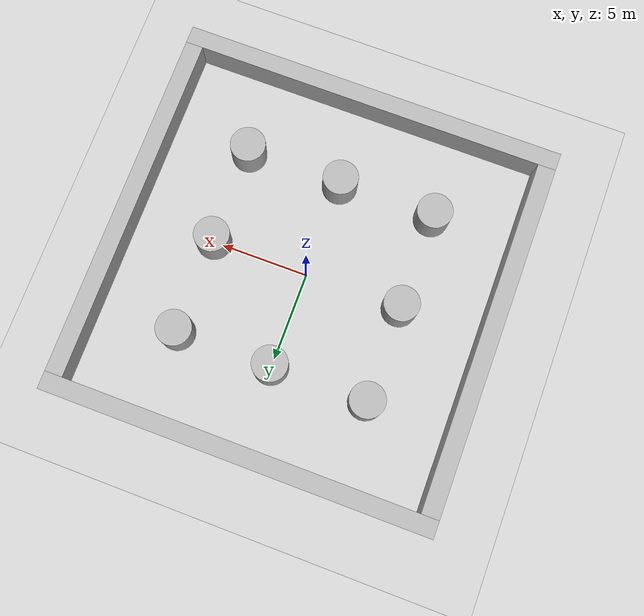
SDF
<sdf version='1.10'>
  <world name='empty'>
    <physics name='1ms' type='ignored'>
      <max_step_size>0.001</max_step_size>
      <real_time_factor>1</real_time_factor>
      <real_time_update_rate>1000</real_time_update_rate>
    </physics>
    <plugin name='gz::sim::systems::Physics' filename='gz-sim-physics-system'/>
    <plugin name='gz::sim::systems::UserCommands' filename='gz-sim-user-commands-system'/>
    <plugin name='gz::sim::systems::SceneBroadcaster' filename='gz-sim-scene-broadcaster-system'/>
    <plugin name='gz::sim::systems::Contact' filename='gz-sim-contact-system'/>
    <gravity>0 0 -9.8000000000000007</gravity>
    <magnetic_field>5.5644999999999998e-06 2.2875799999999999e-05 -4.2388400000000002e-05</magnetic_field>
    <atmosphere type='adiabatic'/>
    <scene>
      <ambient>0.400000006 0.400000006 0.400000006 1</ambient>
      <background>0.699999988 0.699999988 0.699999988 1</background>
      <shadows>true</shadows>
    </scene>
    <model name='ground_plane'>
      <static>true</static>
      <link name='link'>
        <collision name='collision'>
          <geometry>
            <plane>
              <normal>0 0 1</normal>
              <size>100 100</size>
            </plane>
          </geometry>
          <surface>
            <friction>
              <ode/>
            </friction>
            <bounce/>
            <contact/>
          </surface>
        </collision>
        <visual name='visual'>
          <geometry>
            <plane>
              <normal>0 0 1</normal>
              <size>100 100</size>
            </plane>
          </geometry>
          <material>
            <ambient>0.800000012 0.800000012 0.800000012 1</ambient>
            <diffuse>0.800000012 0.800000012 0.800000012 1</diffuse>
            <specular>0.800000012 0.800000012 0.800000012 1</specular>
          </material>
        </visual>
        <pose>0 0 0 0 0 0</pose>
        <inertial>
          <pose>0 0 0 0 0 0</pose>
          <mass>1</mass>
          <inertia>
            <ixx>1</ixx>
            <ixy>0</ixy>
            <ixz>0</ixz>
            <iyy>1</iyy>
            <iyz>0</iyz>
            <izz>1</izz>
          </inertia>
        </inertial>
        <enable_wind>false</enable_wind>
      </link>
      <pose>0 0 0 0 0 0</pose>
      <self_collide>false</self_collide>
    </model>
    <model name='wall'>
      <pose>10.500000925222498 1.1308421438992765e-11 0.99999952955427984 9.5564059599978737e-13 9.2533209407452589e-07 -3.704398449280076e-12</pose>
      <link name='wall_link'>
        <inertial>
          <inertia>
            <ixx>673.33333300000004</ixx>
            <ixy>0</ixy>
            <ixz>0</ixz>
            <iyy>8.3333329999999997</iyy>
            <iyz>0</iyz>
            <izz>668.33333300000004</izz>
          </inertia>
          <mass>20</mass>
          <pose>0 0 0 0 0 0</pose>
        </inertial>
        <collision name='wall_collision'>
          <geometry>
            <box>
              <size>1 20 2</size>
            </box>
          </geometry>
          <surface>
            <friction>
              <ode/>
            </friction>
            <bounce/>
            <contact/>
          </surface>
        </collision>
        <visual name='wall_visual'>
          <geometry>
            <box>
              <size>1 20 2</size>
            </box>
          </geometry>
          <material>
            <ambient>0.300000012 0.300000012 0.300000012 1</ambient>
            <diffuse>0.699999988 0.699999988 0.699999988 1</diffuse>
            <specular>1 1 1 1</specular>
          </material>
        </visual>
        <pose>0 0 0 0 0 0</pose>
        <enable_wind>false</enable_wind>
      </link>
      <static>false</static>
      <self_collide>false</self_collide>
    </model>
    <model name='wall_0'>
      <pose>1.4255685561399451e-08 -10.499999999991125 0.9999998322253878 4.4904454325918757e-12 1.4254746476344775e-08 1.0622119103599673e-12</pose>
      <link name='wall_link'>
        <inertial>
          <inertia>
            <ixx>9.1666659999999993</ixx>
            <ixy>0</ixy>
            <ixz>0</ixz>
            <iyy>894.66666599999996</iyy>
            <iyz>0</iyz>
            <izz>889.16666599999996</izz>
          </inertia>
          <mass>22</mass>
          <pose>0 0 0 0 0 0</pose>
        </inertial>
        <collision name='wall_collision'>
          <geometry>
            <box>
              <size>22 1 2</size>
            </box>
          </geometry>
          <surface>
            <friction>
              <ode/>
            </friction>
            <bounce/>
            <contact/>
          </surface>
        </collision>
        <visual name='wall_visual'>
          <geometry>
            <box>
              <size>22 1 2</size>
            </box>
          </geometry>
          <material>
            <ambient>0.300000012 0.300000012 0.300000012 1</ambient>
            <diffuse>0.699999988 0.699999988 0.699999988 1</diffuse>
            <specular>1 1 1 1</specular>
          </material>
        </visual>
        <pose>0 0 0 0 0 0</pose>
        <enable_wind>false</enable_wind>
      </link>
      <static>false</static>
      <self_collide>false</self_collide>
    </model>
    <model name='wall_1'>
      <pose>-10.499999074896824 2.6528437677718922e-12 0.99999952958362892 2.3523687812325653e-12 9.2524109292318252e-07 -7.2159830187700325e-12</pose>
      <link name='wall_link'>
        <inertial>
          <inertia>
            <ixx>673.33333300000004</ixx>
            <ixy>0</ixy>
            <ixz>0</ixz>
            <iyy>8.3333329999999997</iyy>
            <iyz>0</iyz>
            <izz>668.33333300000004</izz>
          </inertia>
          <mass>20</mass>
          <pose>0 0 0 0 0 0</pose>
        </inertial>
        <collision name='wall_collision'>
          <geometry>
            <box>
              <size>1 20 2</size>
            </box>
          </geometry>
          <surface>
            <friction>
              <ode/>
            </friction>
            <bounce/>
            <contact/>
          </surface>
        </collision>
        <visual name='wall_visual'>
          <geometry>
            <box>
              <size>1 20 2</size>
            </box>
          </geometry>
          <material>
            <ambient>0.300000012 0.300000012 0.300000012 1</ambient>
            <diffuse>0.699999988 0.699999988 0.699999988 1</diffuse>
            <specular>1 1 1 1</specular>
          </material>
        </visual>
        <pose>0 0 0 0 0 0</pose>
        <enable_wind>false</enable_wind>
      </link>
      <static>false</static>
      <self_collide>false</self_collide>
    </model>
    <model name='wall_2'>
      <pose>1.4254711606829994e-08 10.500000000072113 0.99999983222564237 -2.9819604280219897e-13 1.4254763200649176e-08 5.5100746540078379e-12</pose>
      <link name='wall_link'>
        <inertial>
          <inertia>
            <ixx>9.1666659999999993</ixx>
            <ixy>0</ixy>
            <ixz>0</ixz>
            <iyy>894.66666599999996</iyy>
            <iyz>0</iyz>
            <izz>889.16666599999996</izz>
          </inertia>
          <mass>22</mass>
          <pose>0 0 0 0 0 0</pose>
        </inertial>
        <collision name='wall_collision'>
          <geometry>
            <box>
              <size>22 1 2</size>
            </box>
          </geometry>
          <surface>
            <friction>
              <ode/>
            </friction>
            <bounce/>
            <contact/>
          </surface>
        </collision>
        <visual name='wall_visual'>
          <geometry>
            <box>
              <size>22 1 2</size>
            </box>
          </geometry>
          <material>
            <ambient>0.300000012 0.300000012 0.300000012 1</ambient>
            <diffuse>0.699999988 0.699999988 0.699999988 1</diffuse>
            <specular>1 1 1 1</specular>
          </material>
        </visual>
        <pose>0 0 0 0 0 0</pose>
        <enable_wind>false</enable_wind>
      </link>
      <static>false</static>
      <self_collide>false</self_collide>
    </model>
    <model name='cylinder'>
      <pose>5.5 5.5 1 0 0 0</pose>
      <link name='cylinder_link'>
        <inertial>
          <inertia>
            <ixx>11.666666</ixx>
            <ixy>0</ixy>
            <ixz>0</ixz>
            <iyy>11.666666</iyy>
            <iyz>0</iyz>
            <izz>20</izz>
          </inertia>
          <mass>20</mass>
          <pose>0 0 0 0 0 0</pose>
        </inertial>
        <collision name='cylinder_collision'>
          <geometry>
            <cylinder>
              <radius>1</radius>
              <length>2</length>
            </cylinder>
          </geometry>
          <surface>
            <friction>
              <ode/>
            </friction>
            <bounce/>
            <contact/>
          </surface>
        </collision>
        <visual name='cylinder_visual'>
          <geometry>
            <cylinder>
              <radius>1</radius>
              <length>2</length>
            </cylinder>
          </geometry>
          <material>
            <ambient>0.300000012 0.300000012 0.300000012 1</ambient>
            <diffuse>0.699999988 0.699999988 0.699999988 1</diffuse>
            <specular>1 1 1 1</specular>
          </material>
        </visual>
        <pose>0 0 0 0 0 0</pose>
        <enable_wind>false</enable_wind>
      </link>
      <static>false</static>
      <self_collide>false</self_collide>
    </model>
    <model name='cylinder_0'>
      <pose>0 5.5 1 0 0 0</pose>
      <link name='cylinder_link'>
        <inertial>
          <inertia>
            <ixx>11.666666</ixx>
            <ixy>0</ixy>
            <ixz>0</ixz>
            <iyy>11.666666</iyy>
            <iyz>0</iyz>
            <izz>20</izz>
          </inertia>
          <mass>20</mass>
          <pose>0 0 0 0 0 0</pose>
        </inertial>
        <collision name='cylinder_collision'>
          <geometry>
            <cylinder>
              <radius>1</radius>
              <length>2</length>
            </cylinder>
          </geometry>
          <surface>
            <friction>
              <ode/>
            </friction>
            <bounce/>
            <contact/>
          </surface>
        </collision>
        <visual name='cylinder_visual'>
          <geometry>
            <cylinder>
              <radius>1</radius>
              <length>2</length>
            </cylinder>
          </geometry>
          <material>
            <ambient>0.300000012 0.300000012 0.300000012 1</ambient>
            <diffuse>0.699999988 0.699999988 0.699999988 1</diffuse>
            <specular>1 1 1 1</specular>
          </material>
        </visual>
        <pose>0 0 0 0 0 0</pose>
        <enable_wind>false</enable_wind>
      </link>
      <static>false</static>
      <self_collide>false</self_collide>
    </model>
    <model name='cylinder_1'>
      <pose>-5.5 5.5 1 0 0 0</pose>
      <link name='cylinder_link'>
        <inertial>
          <inertia>
            <ixx>11.666666</ixx>
            <ixy>0</ixy>
            <ixz>0</ixz>
            <iyy>11.666666</iyy>
            <iyz>0</iyz>
            <izz>20</izz>
          </inertia>
          <mass>20</mass>
          <pose>0 0 0 0 0 0</pose>
        </inertial>
        <collision name='cylinder_collision'>
          <geometry>
            <cylinder>
              <radius>1</radius>
              <length>2</length>
            </cylinder>
          </geometry>
          <surface>
            <friction>
              <ode/>
            </friction>
            <bounce/>
            <contact/>
          </surface>
        </collision>
        <visual name='cylinder_visual'>
          <geometry>
            <cylinder>
              <radius>1</radius>
              <length>2</length>
            </cylinder>
          </geometry>
          <material>
            <ambient>0.300000012 0.300000012 0.300000012 1</ambient>
            <diffuse>0.699999988 0.699999988 0.699999988 1</diffuse>
            <specular>1 1 1 1</specular>
          </material>
        </visual>
        <pose>0 0 0 0 0 0</pose>
        <enable_wind>false</enable_wind>
      </link>
      <static>false</static>
      <self_collide>false</self_collide>
    </model>
    <model name='cylinder_2'>
      <pose>5.5 0 1 0 0 0</pose>
      <link name='cylinder_link'>
        <inertial>
          <inertia>
            <ixx>11.666666</ixx>
            <ixy>0</ixy>
            <ixz>0</ixz>
            <iyy>11.666666</iyy>
            <iyz>0</iyz>
            <izz>20</izz>
          </inertia>
          <mass>20</mass>
          <pose>0 0 0 0 0 0</pose>
        </inertial>
        <collision name='cylinder_collision'>
          <geometry>
            <cylinder>
              <radius>1</radius>
              <length>2</length>
            </cylinder>
          </geometry>
          <surface>
            <friction>
              <ode/>
            </friction>
            <bounce/>
            <contact/>
          </surface>
        </collision>
        <visual name='cylinder_visual'>
          <geometry>
            <cylinder>
              <radius>1</radius>
              <length>2</length>
            </cylinder>
          </geometry>
          <material>
            <ambient>0.300000012 0.300000012 0.300000012 1</ambient>
            <diffuse>0.699999988 0.699999988 0.699999988 1</diffuse>
            <specular>1 1 1 1</specular>
          </material>
        </visual>
        <pose>0 0 0 0 0 0</pose>
        <enable_wind>false</enable_wind>
      </link>
      <static>false</static>
      <self_collide>false</self_collide>
    </model>
    <model name='cylinder_3'>
      <pose>-5.5 0 1 0 0 0</pose>
      <link name='cylinder_link'>
        <inertial>
          <inertia>
            <ixx>11.666666</ixx>
            <ixy>0</ixy>
            <ixz>0</ixz>
            <iyy>11.666666</iyy>
            <iyz>0</iyz>
            <izz>20</izz>
          </inertia>
          <mass>20</mass>
          <pose>0 0 0 0 0 0</pose>
        </inertial>
        <collision name='cylinder_collision'>
          <geometry>
            <cylinder>
              <radius>1</radius>
              <length>2</length>
            </cylinder>
          </geometry>
          <surface>
            <friction>
              <ode/>
            </friction>
            <bounce/>
            <contact/>
          </surface>
        </collision>
        <visual name='cylinder_visual'>
          <geometry>
            <cylinder>
              <radius>1</radius>
              <length>2</length>
            </cylinder>
          </geometry>
          <material>
            <ambient>0.300000012 0.300000012 0.300000012 1</ambient>
            <diffuse>0.699999988 0.699999988 0.699999988 1</diffuse>
            <specular>1 1 1 1</specular>
          </material>
        </visual>
        <pose>0 0 0 0 0 0</pose>
        <enable_wind>false</enable_wind>
      </link>
      <static>false</static>
      <self_collide>false</self_collide>
    </model>
    <model name='cylinder_4'>
      <pose>5.5 -5.5 1 0 0 0</pose>
      <link name='cylinder_link'>
        <inertial>
          <inertia>
            <ixx>11.666666</ixx>
            <ixy>0</ixy>
            <ixz>0</ixz>
            <iyy>11.666666</iyy>
            <iyz>0</iyz>
            <izz>20</izz>
          </inertia>
          <mass>20</mass>
          <pose>0 0 0 0 0 0</pose>
        </inertial>
        <collision name='cylinder_collision'>
          <geometry>
            <cylinder>
              <radius>1</radius>
              <length>2</length>
            </cylinder>
          </geometry>
          <surface>
            <friction>
              <ode/>
            </friction>
            <bounce/>
            <contact/>
          </surface>
        </collision>
        <visual name='cylinder_visual'>
          <geometry>
            <cylinder>
              <radius>1</radius>
              <length>2</length>
            </cylinder>
          </geometry>
          <material>
            <ambient>0.300000012 0.300000012 0.300000012 1</ambient>
            <diffuse>0.699999988 0.699999988 0.699999988 1</diffuse>
            <specular>1 1 1 1</specular>
          </material>
        </visual>
        <pose>0 0 0 0 0 0</pose>
        <enable_wind>false</enable_wind>
      </link>
      <static>false</static>
      <self_collide>false</self_collide>
    </model>
    <model name='cylinder_5'>
      <pose>0 -5.5 1 0 0 0</pose>
      <link name='cylinder_link'>
        <inertial>
          <inertia>
            <ixx>11.666666</ixx>
            <ixy>0</ixy>
            <ixz>0</ixz>
            <iyy>11.666666</iyy>
            <iyz>0</iyz>
            <izz>20</izz>
          </inertia>
          <mass>20</mass>
          <pose>0 0 0 0 0 0</pose>
        </inertial>
        <collision name='cylinder_collision'>
          <geometry>
            <cylinder>
              <radius>1</radius>
              <length>2</length>
            </cylinder>
          </geometry>
          <surface>
            <friction>
              <ode/>
            </friction>
            <bounce/>
            <contact/>
          </surface>
        </collision>
        <visual name='cylinder_visual'>
          <geometry>
            <cylinder>
              <radius>1</radius>
              <length>2</length>
            </cylinder>
          </geometry>
          <material>
            <ambient>0.300000012 0.300000012 0.300000012 1</ambient>
            <diffuse>0.699999988 0.699999988 0.699999988 1</diffuse>
            <specular>1 1 1 1</specular>
          </material>
        </visual>
        <pose>0 0 0 0 0 0</pose>
        <enable_wind>false</enable_wind>
      </link>
      <static>false</static>
      <self_collide>false</self_collide>
    </model>
    <model name='cylinder_6'>
      <pose>-5.5 -5.5 1 0 0 0</pose>
      <link name='cylinder_link'>
        <inertial>
          <inertia>
            <ixx>11.666666</ixx>
            <ixy>0</ixy>
            <ixz>0</ixz>
            <iyy>11.666666</iyy>
            <iyz>0</iyz>
            <izz>20</izz>
          </inertia>
          <mass>20</mass>
          <pose>0 0 0 0 0 0</pose>
        </inertial>
        <collision name='cylinder_collision'>
          <geometry>
            <cylinder>
              <radius>1</radius>
              <length>2</length>
            </cylinder>
          </geometry>
          <surface>
            <friction>
              <ode/>
            </friction>
            <bounce/>
            <contact/>
          </surface>
        </collision>
        <visual name='cylinder_visual'>
          <geometry>
            <cylinder>
              <radius>1</radius>
              <length>2</length>
            </cylinder>
          </geometry>
          <material>
            <ambient>0.300000012 0.300000012 0.300000012 1</ambient>
            <diffuse>0.699999988 0.699999988 0.699999988 1</diffuse>
            <specular>1 1 1 1</specular>
          </material>
        </visual>
        <pose>0 0 0 0 0 0</pose>
        <enable_wind>false</enable_wind>
      </link>
      <static>false</static>
      <self_collide>false</self_collide>
    </model>
    <light name='sun' type='directional'>
      <pose>0 0 10 0 0 0</pose>
      <cast_shadows>true</cast_shadows>
      <intensity>1</intensity>
      <direction>-0.5 0.10000000000000001 -0.90000000000000002</direction>
      <diffuse>0.800000012 0.800000012 0.800000012 1</diffuse>
      <specular>0.200000003 0.200000003 0.200000003 1</specular>
      <attenuation>
        <range>1000</range>
        <linear>0.01</linear>
        <constant>0.90000000000000002</constant>
        <quadratic>0.001</quadratic>
      </attenuation>
      <spot>
        <inner_angle>0</inner_angle>
        <outer_angle>0</outer_angle>
        <falloff>0</falloff>
      </spot>
    </light>
  </world>
</sdf>
